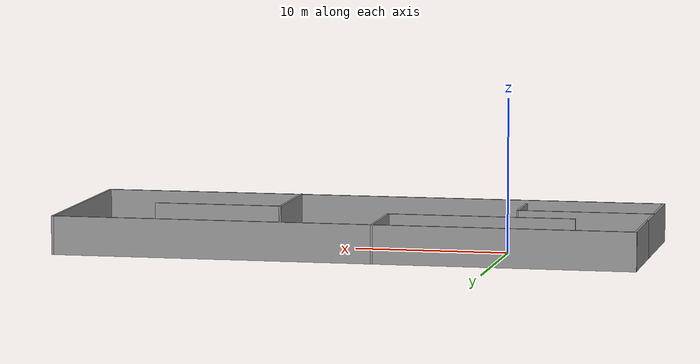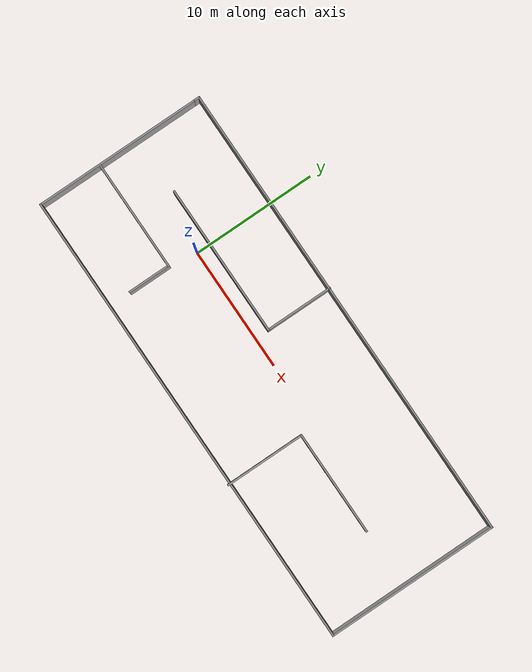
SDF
<?xml version='1.0'?>
<sdf version='1.7'>
  <model name='room'>
    <pose>9.70484 -0.575634 0 0 -0 0</pose>
    <link name='Wall_12'>
      <collision name='Wall_12_Collision'>
        <geometry>
          <box>
            <size>13.5 0.15 2.5</size>
          </box>
        </geometry>
        <pose>0 0 1.25 0 -0 0</pose>
      </collision>
      <visual name='Wall_12_Visual'>
        <pose>0 0 1.25 0 -0 0</pose>
        <geometry>
          <box>
            <size>13.5 0.15 2.5</size>
          </box>
        </geometry>
        <material>
          <script>
            <uri>file://media/materials/scripts/gazebo.material</uri>
            <name>Gazebo/Grey</name>
          </script>
          <ambient>1 1 1 1</ambient>
        </material>
        <meta>
          <layer>0</layer>
        </meta>
      </visual>
      <pose>-18.8 -0.201197 0 0 -0 -1.5708</pose>
    </link>
    <link name='Wall_13'>
      <collision name='Wall_13_Collision'>
        <geometry>
          <box>
            <size>37.75 0.15 2.5</size>
          </box>
        </geometry>
        <pose>0 0 1.25 0 -0 0</pose>
      </collision>
      <visual name='Wall_13_Visual'>
        <pose>0 0 1.25 0 -0 0</pose>
        <geometry>
          <box>
            <size>37.75 0.15 2.5</size>
          </box>
        </geometry>
        <material>
          <script>
            <uri>file://media/materials/scripts/gazebo.material</uri>
            <name>Gazebo/Grey</name>
          </script>
          <ambient>1 1 1 1</ambient>
        </material>
        <meta>
          <layer>0</layer>
        </meta>
      </visual>
      <pose>-0 -6.8762 0 0 -0 0</pose>
    </link>
    <link name='Wall_14'>
      <collision name='Wall_14_Collision'>
        <geometry>
          <box>
            <size>14 0.15 2.5</size>
          </box>
        </geometry>
        <pose>0 0 1.25 0 -0 0</pose>
      </collision>
      <visual name='Wall_14_Visual'>
        <pose>0 0 1.25 0 -0 0</pose>
        <geometry>
          <box>
            <size>14 0.15 2.5</size>
          </box>
        </geometry>
        <material>
          <script>
            <uri>file://media/materials/scripts/gazebo.material</uri>
            <name>Gazebo/Grey</name>
          </script>
          <ambient>1 1 1 1</ambient>
        </material>
        <meta>
          <layer>0</layer>
        </meta>
      </visual>
      <pose>18.8 0.048803 0 0 -0 1.5708</pose>
    </link>
    <link name='Wall_15'>
      <collision name='Wall_15_Collision'>
        <geometry>
          <box>
            <size>37.75 0.15 2.5</size>
          </box>
        </geometry>
        <pose>0 0 1.25 0 -0 0</pose>
      </collision>
      <visual name='Wall_15_Visual'>
        <pose>0 0 1.25 0 -0 0</pose>
        <geometry>
          <box>
            <size>37.75 0.15 2.5</size>
          </box>
        </geometry>
        <material>
          <script>
            <uri>file://media/materials/scripts/gazebo.material</uri>
            <name>Gazebo/Grey</name>
          </script>
          <ambient>1 1 1 1</ambient>
        </material>
        <meta>
          <layer>0</layer>
        </meta>
      </visual>
      <pose>-0 6.9738 0 0 -0 3.14159</pose>
    </link>
    <link name='Wall_16'>
      <collision name='Wall_16_Collision'>
        <geometry>
          <box>
            <size>5.75 0.15 2.5</size>
          </box>
        </geometry>
        <pose>0 0 1.25 0 -0 0</pose>
      </collision>
      <visual name='Wall_16_Visual'>
        <pose>0 0 1.25 0 -0 0</pose>
        <geometry>
          <box>
            <size>5.75 0.15 2.5</size>
          </box>
        </geometry>
        <material>
          <script>
            <uri>file://media/materials/scripts/gazebo.material</uri>
            <name>Gazebo/Grey</name>
          </script>
          <ambient>1 1 1 1</ambient>
        </material>
        <meta>
          <layer>0</layer>
        </meta>
      </visual>
      <pose>-18.8 4.1738 0 0 -0 -1.5708</pose>
    </link>
    <link name='Wall_18'>
      <collision name='Wall_18_Collision'>
        <geometry>
          <box>
            <size>9 0.15 2.5</size>
          </box>
        </geometry>
        <pose>0 0 1.25 0 -0 0</pose>
      </collision>
      <visual name='Wall_18_Visual'>
        <pose>0 0 1.25 0 -0 0</pose>
        <geometry>
          <box>
            <size>9 0.15 2.5</size>
          </box>
        </geometry>
        <material>
          <script>
            <uri>file://media/materials/scripts/gazebo.material</uri>
            <name>Gazebo/Grey</name>
          </script>
          <ambient>1 1 1 1</ambient>
        </material>
        <meta>
          <layer>0</layer>
        </meta>
      </visual>
      <pose>-14.375 -1.71208 0 0 -0 0</pose>
    </link>
    <link name='Wall_19'>
      <collision name='Wall_19_Collision'>
        <geometry>
          <box>
            <size>3.5 0.15 2.5</size>
          </box>
        </geometry>
        <pose>0 0 1.25 0 -0 0</pose>
      </collision>
      <visual name='Wall_19_Visual'>
        <pose>0 0 1.25 0 -0 0</pose>
        <geometry>
          <box>
            <size>3.5 0.15 2.5</size>
          </box>
        </geometry>
        <material>
          <script>
            <uri>file://media/materials/scripts/gazebo.material</uri>
            <name>Gazebo/Grey</name>
          </script>
          <ambient>1 1 1 1</ambient>
        </material>
        <meta>
          <layer>0</layer>
        </meta>
      </visual>
      <pose>-9.95 -3.38708 0 0 -0 -1.5708</pose>
    </link>
    <link name='Wall_21'>
      <collision name='Wall_21_Collision'>
        <geometry>
          <box>
            <size>5.5 0.15 2.5</size>
          </box>
        </geometry>
        <pose>0 0 1.25 0 -0 0</pose>
      </collision>
      <visual name='Wall_21_Visual'>
        <pose>0 0 1.25 0 -0 0</pose>
        <geometry>
          <box>
            <size>5.5 0.15 2.5</size>
          </box>
        </geometry>
        <material>
          <script>
            <uri>file://media/materials/scripts/gazebo.material</uri>
            <name>Gazebo/Grey</name>
          </script>
          <ambient>1 1 1 1</ambient>
        </material>
        <meta>
          <layer>0</layer>
        </meta>
      </visual>
      <pose>-2.05372 4.33383 0 0 -0 -1.5708</pose>
    </link>
    <link name='Wall_22'>
      <collision name='Wall_22_Collision'>
        <geometry>
          <box>
            <size>12.25 0.15 2.5</size>
          </box>
        </geometry>
        <pose>0 0 1.25 0 -0 0</pose>
      </collision>
      <visual name='Wall_22_Visual'>
        <pose>0 0 1.25 0 -0 0</pose>
        <geometry>
          <box>
            <size>12.25 0.15 2.5</size>
          </box>
        </geometry>
        <material>
          <script>
            <uri>file://media/materials/scripts/gazebo.material</uri>
            <name>Gazebo/Grey</name>
          </script>
          <ambient>1 1 1 1</ambient>
        </material>
        <meta>
          <layer>0</layer>
        </meta>
      </visual>
      <pose>-8.10372 1.65883 0 0 -0 3.14159</pose>
    </link>
    <link name='Wall_24'>
      <collision name='Wall_24_Collision'>
        <geometry>
          <box>
            <size>6.5 0.15 2.5</size>
          </box>
        </geometry>
        <pose>0 0 1.25 0 -0 0</pose>
      </collision>
      <visual name='Wall_24_Visual'>
        <pose>0 0 1.25 0 -0 0</pose>
        <geometry>
          <box>
            <size>6.5 0.15 2.5</size>
          </box>
        </geometry>
        <material>
          <script>
            <uri>file://media/materials/scripts/gazebo.material</uri>
            <name>Gazebo/Grey</name>
          </script>
          <ambient>1 1 1 1</ambient>
        </material>
        <meta>
          <layer>0</layer>
        </meta>
      </visual>
      <pose>5.59714 -3.83383 0 0 -0 1.5708</pose>
    </link>
    <link name='Wall_25'>
      <collision name='Wall_25_Collision'>
        <geometry>
          <box>
            <size>8.5 0.15 2.5</size>
          </box>
        </geometry>
        <pose>0 0 1.25 0 -0 0</pose>
      </collision>
      <visual name='Wall_25_Visual'>
        <pose>0 0 1.25 0 -0 0</pose>
        <geometry>
          <box>
            <size>8.5 0.15 2.5</size>
          </box>
        </geometry>
        <material>
          <script>
            <uri>file://media/materials/scripts/gazebo.material</uri>
            <name>Gazebo/Grey</name>
          </script>
          <ambient>1 1 1 1</ambient>
        </material>
        <meta>
          <layer>0</layer>
        </meta>
      </visual>
      <pose>9.77214 -0.658828 0 0 -0 0</pose>
    </link>
    <static>1</static>
  </model>
</sdf>
